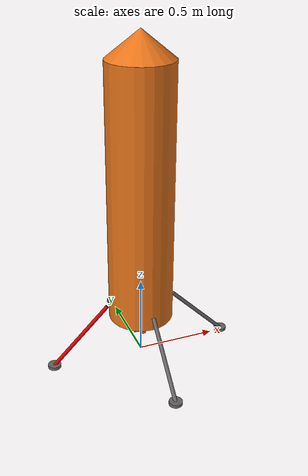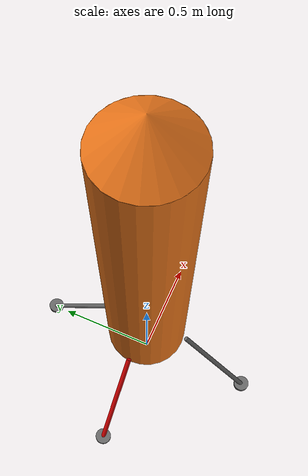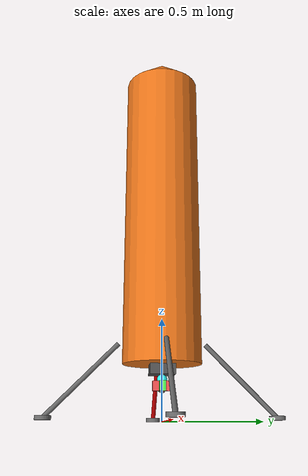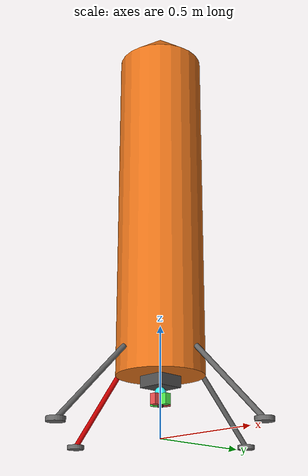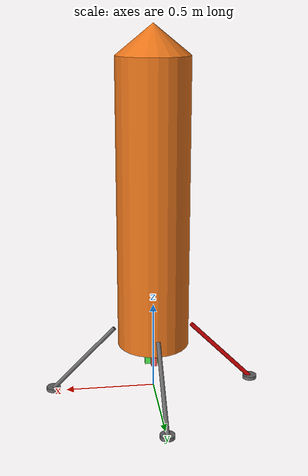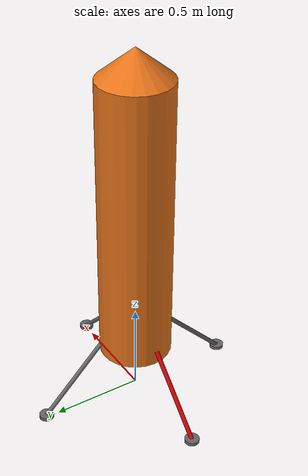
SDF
<?xml version="1.0"?>
<sdf version="1.11">
  <model name="TVC_Real">
    <self_collide>false</self_collide>
    <!-- Simplified visuals: orange body (r=0.20, L=1.6) + scaled landing gear + TVC/thrust markers. -->
    <link name="base_link">
      <pose>0 0 1.0725 0 0 0</pose>
      <inertial>
        <mass>20.0</mass>
        <pose>0 0 0 0 0 0</pose>
        <inertia>
          <ixx>3.2987</ixx>
          <iyy>3.2987</iyy>
          <izz>0.0640</izz>
          <ixy>0</ixy>
          <ixz>0</ixz>
          <iyz>0</iyz>
        </inertia>
      </inertial>

      <visual name="body_visual">
        <geometry>
          <cylinder>
            <radius>0.20</radius>
            <length>1.6</length>
          </cylinder>
        </geometry>
        <material>
          <ambient>0.75 0.35 0.05 1</ambient>
          <diffuse>0.90 0.45 0.10 1</diffuse>
          <specular>0.2 0.2 0.2 1</specular>
        </material>
      </visual>

      <!-- Nose cone on body (visual only; separate link caused ODE crash with TVC chain). -->
      <visual name="top_cone_visual">
        <pose>0 0 0.88 0 0 0</pose>
        <geometry>
          <cone>
            <radius>0.20</radius>
            <length>0.16</length>
          </cone>
        </geometry>
        <material>
          <ambient>0.75 0.35 0.05 1</ambient>
          <diffuse>0.90 0.45 0.10 1</diffuse>
        </material>
      </visual>

      <!-- Box collision: cylinders tip easily on rim contacts in DART/ODE. -->
      <collision name="body_collision">
        <geometry>
          <box>
            <size>0.4 0.4 1.6</size>
          </box>
        </geometry>
        <surface>
          <contact>
            <ode>
              <min_depth>0.001</min_depth>
              <max_vel>0.1</max_vel>
            </ode>
          </contact>
          <friction>
            <ode>
              <mu>1.0</mu>
              <mu2>1.0</mu2>
            </ode>
          </friction>
          <bounce>
            <restitution_coefficient>0</restitution_coefficient>
          </bounce>
        </surface>
      </collision>

      <sensor name="air_pressure_sensor" type="air_pressure">
        <always_on>1</always_on>
        <update_rate>50</update_rate>
        <air_pressure>
          <pressure>
            <noise type="gaussian">
              <mean>0</mean>
              <stddev>0</stddev>
            </noise>
          </pressure>
        </air_pressure>
      </sensor>
      <sensor name="magnetometer_sensor" type="magnetometer">
        <always_on>1</always_on>
        <update_rate>100</update_rate>
        <magnetometer>
          <x>
            <noise type="gaussian">
              <stddev>0.0001</stddev>
            </noise>
          </x>
          <y>
            <noise type="gaussian">
              <stddev>0.0001</stddev>
            </noise>
          </y>
          <z>
            <noise type="gaussian">
              <stddev>0.0001</stddev>
            </noise>
          </z>
        </magnetometer>
      </sensor>
      <sensor name="imu_sensor" type="imu">
        <always_on>1</always_on>
        <update_rate>250</update_rate>
        <imu>
          <angular_velocity>
            <x>
              <noise type="gaussian">
                <mean>0.0</mean>
                <stddev>0.0008726646</stddev>
              </noise>
            </x>
            <y>
              <noise type="gaussian">
                <mean>0.0</mean>
                <stddev>0.0008726646</stddev>
              </noise>
            </y>
            <z>
              <noise type="gaussian">
                <mean>0.0</mean>
                <stddev>0.0008726646</stddev>
              </noise>
            </z>
          </angular_velocity>
          <linear_acceleration>
            <x>
              <noise type="gaussian">
                <mean>0.0</mean>
                <stddev>0.00637</stddev>
              </noise>
            </x>
            <y>
              <noise type="gaussian">
                <mean>0.0</mean>
                <stddev>0.00637</stddev>
              </noise>
            </y>
            <z>
              <noise type="gaussian">
                <mean>0.0</mean>
                <stddev>0.00686</stddev>
              </noise>
            </z>
          </linear_acceleration>
        </imu>
      </sensor>
      <sensor name="navsat_sensor" type="navsat">
        <always_on>1</always_on>
        <update_rate>30</update_rate>
      </sensor>

      <!-- Landing gear visuals on body (proxy layout: pitch/roll ±45°, four azimuths). -->
      <visual name="leg_1_visual">
        <pose>0.397 0 -0.8785 0 -0.78539816339 0</pose>
        <geometry>
          <cylinder>
            <radius>0.012</radius>
            <length>0.50</length>
          </cylinder>
        </geometry>
        <material>
          <ambient>0.2 0.2 0.2 1</ambient>
          <diffuse>0.4 0.4 0.4 1</diffuse>
        </material>
      </visual>
      <visual name="leg_2_visual">
        <pose>0 0.397 -0.8785 0.78539816339 0 0</pose>
        <geometry>
          <cylinder>
            <radius>0.012</radius>
            <length>0.50</length>
          </cylinder>
        </geometry>
        <material>
          <ambient>0.2 0.2 0.2 1</ambient>
          <diffuse>0.4 0.4 0.4 1</diffuse>
        </material>
      </visual>
      <visual name="leg_3_visual">
        <pose>-0.397 0 -0.8785 0 0.78539816339 0</pose>
        <geometry>
          <cylinder>
            <radius>0.012</radius>
            <length>0.50</length>
          </cylinder>
        </geometry>
        <material>
          <ambient>0.2 0 0 1</ambient>
          <diffuse>0.8 0 0 1</diffuse>
        </material>
      </visual>
      <visual name="leg_4_visual">
        <pose>0 -0.397 -0.8785 -0.78539816339 0 0</pose>
        <geometry>
          <cylinder>
            <radius>0.012</radius>
            <length>0.50</length>
          </cylinder>
        </geometry>
        <material>
          <ambient>0.2 0.2 0.2 1</ambient>
          <diffuse>0.4 0.4 0.4 1</diffuse>
        </material>
      </visual>
      <visual name="foot_1_visual">
        <pose>0.573 0 -1.055 0 0 0</pose>
        <geometry>
          <cylinder>
            <radius>0.04</radius>
            <length>0.02</length>
          </cylinder>
        </geometry>
        <material>
          <ambient>0.2 0.2 0.2 1</ambient>
          <diffuse>0.4 0.4 0.4 1</diffuse>
        </material>
      </visual>
      <visual name="foot_2_visual">
        <pose>0 0.573 -1.055 0 0 0</pose>
        <geometry>
          <cylinder>
            <radius>0.04</radius>
            <length>0.02</length>
          </cylinder>
        </geometry>
        <material>
          <ambient>0.2 0.2 0.2 1</ambient>
          <diffuse>0.4 0.4 0.4 1</diffuse>
        </material>
      </visual>
      <visual name="foot_3_visual">
        <pose>-0.573 0 -1.055 0 0 0</pose>
        <geometry>
          <cylinder>
            <radius>0.04</radius>
            <length>0.02</length>
          </cylinder>
        </geometry>
        <material>
          <ambient>0.2 0.2 0.2 1</ambient>
          <diffuse>0.4 0.4 0.4 1</diffuse>
        </material>
      </visual>
      <visual name="foot_4_visual">
        <pose>0 -0.573 -1.055 0 0 0</pose>
        <geometry>
          <cylinder>
            <radius>0.04</radius>
            <length>0.02</length>
          </cylinder>
        </geometry>
        <material>
          <ambient>0.2 0.2 0.2 1</ambient>
          <diffuse>0.4 0.4 0.4 1</diffuse>
        </material>
      </visual>

      <!-- Landing gear collisions: feet only (leg cylinders overlap TVC at body bottom). -->
      <collision name="foot_1_collision">
        <pose>0.573 0 -1.055 0 0 0</pose>
        <geometry>
          <box>
            <size>0.08 0.08 0.02</size>
          </box>
        </geometry>
        <surface>
          <contact>
            <ode>
              <min_depth>0.001</min_depth>
              <max_vel>0.1</max_vel>
            </ode>
          </contact>
          <friction>
            <ode>
              <mu>1.2</mu>
              <mu2>1.2</mu2>
            </ode>
          </friction>
          <bounce>
            <restitution_coefficient>0</restitution_coefficient>
          </bounce>
        </surface>
      </collision>
      <collision name="foot_2_collision">
        <pose>0 0.573 -1.055 0 0 0</pose>
        <geometry>
          <box>
            <size>0.08 0.08 0.02</size>
          </box>
        </geometry>
        <surface>
          <contact>
            <ode>
              <min_depth>0.001</min_depth>
              <max_vel>0.1</max_vel>
            </ode>
          </contact>
          <friction>
            <ode>
              <mu>1.2</mu>
              <mu2>1.2</mu2>
            </ode>
          </friction>
          <bounce>
            <restitution_coefficient>0</restitution_coefficient>
          </bounce>
        </surface>
      </collision>
      <collision name="foot_3_collision">
        <pose>-0.573 0 -1.055 0 0 0</pose>
        <geometry>
          <box>
            <size>0.08 0.08 0.02</size>
          </box>
        </geometry>
        <surface>
          <contact>
            <ode>
              <min_depth>0.001</min_depth>
              <max_vel>0.1</max_vel>
            </ode>
          </contact>
          <friction>
            <ode>
              <mu>1.2</mu>
              <mu2>1.2</mu2>
            </ode>
          </friction>
          <bounce>
            <restitution_coefficient>0</restitution_coefficient>
          </bounce>
        </surface>
      </collision>
      <collision name="foot_4_collision">
        <pose>0 -0.573 -1.055 0 0 0</pose>
        <geometry>
          <box>
            <size>0.08 0.08 0.02</size>
          </box>
        </geometry>
        <surface>
          <contact>
            <ode>
              <min_depth>0.001</min_depth>
              <max_vel>0.1</max_vel>
            </ode>
          </contact>
          <friction>
            <ode>
              <mu>1.2</mu>
              <mu2>1.2</mu2>
            </ode>
          </friction>
          <bounce>
            <restitution_coefficient>0</restitution_coefficient>
          </bounce>
        </surface>
      </collision>
    </link>

    <!-- TVC chain: links co-located with base_link (avoid fixed-joint pose conflict at 20 kg). -->
    <link name="gimbal_mount">
      <pose>0 0 1.0725 0 0 0</pose>
      <inertial>
        <mass>0.005</mass>
        <inertia>
          <ixx>1e-5</ixx>
          <iyy>1e-5</iyy>
          <izz>1e-5</izz>
          <ixy>0</ixy>
          <ixz>0</ixz>
          <iyz>0</iyz>
        </inertia>
      </inertial>
      <visual name="gimbal_mount_visual">
        <pose>0 0 -0.82 0 0 0</pose>
        <geometry>
          <box>
            <size>0.128 0.128 0.064</size>
          </box>
        </geometry>
        <material>
          <ambient>0.1 0.1 0.1 1</ambient>
          <diffuse>0.3 0.3 0.3 1</diffuse>
        </material>
      </visual>
    </link>

    <link name="servo0_roll">
      <pose>0 0 1.0725 0 0 0</pose>
      <inertial>
        <mass>0.003</mass>
        <inertia>
          <ixx>1e-5</ixx>
          <iyy>1e-5</iyy>
          <izz>1e-5</izz>
          <ixy>0</ixy>
          <ixz>0</ixz>
          <iyz>0</iyz>
        </inertia>
      </inertial>
      <visual name="servo0_roll_visual">
        <pose>0 0 -0.905 0 0 0</pose>
        <geometry>
          <box>
            <size>0.032 0.096 0.048</size>
          </box>
        </geometry>
        <material>
          <ambient>0.8 0.2 0.2 1</ambient>
          <diffuse>0.9 0.3 0.3 1</diffuse>
        </material>
      </visual>
    </link>

    <link name="servo1_pitch">
      <pose>0 0 1.0725 0 0 0</pose>
      <inertial>
        <mass>0.003</mass>
        <inertia>
          <ixx>1e-5</ixx>
          <iyy>1e-5</iyy>
          <izz>1e-5</izz>
          <ixy>0</ixy>
          <ixz>0</ixz>
          <iyz>0</iyz>
        </inertia>
      </inertial>
      <visual name="servo1_pitch_visual">
        <pose>0 0 -0.905 0 0 0</pose>
        <geometry>
          <box>
            <size>0.096 0.032 0.048</size>
          </box>
        </geometry>
        <material>
          <ambient>0.2 0.8 0.2 1</ambient>
          <diffuse>0.3 0.9 0.3 1</diffuse>
        </material>
      </visual>
    </link>

    <link name="motor_housing">
      <pose>0 0 1.0725 0 0 0</pose>
      <inertial>
        <mass>0.01</mass>
        <inertia>
          <ixx>1e-5</ixx>
          <iyy>1e-5</iyy>
          <izz>1e-5</izz>
          <ixy>0</ixy>
          <ixz>0</ixz>
          <iyz>0</iyz>
        </inertia>
      </inertial>
      <visual name="motor_housing_visual">
        <pose>0 0 -0.905 0 0 0</pose>
        <geometry>
          <cylinder>
            <radius>0.013</radius>
            <length>0.064</length>
          </cylinder>
        </geometry>
        <material>
          <ambient>0.1 0.1 0.1 1</ambient>
          <diffuse>0.2 0.2 0.2 1</diffuse>
        </material>
      </visual>
      <visual name="thrust_point_visual">
        <pose>0 0 -0.873 0 0 0</pose>
        <geometry>
          <sphere>
            <radius>0.025</radius>
          </sphere>
        </geometry>
        <material>
          <ambient>0.1 0.9 1.0 1</ambient>
          <diffuse>0.2 1.0 1.0 1</diffuse>
          <emissive>0.0 0.6 0.8 1</emissive>
        </material>
      </visual>
      <visual name="thrust_axis_visual">
        <pose>0 0 -0.825 0 0 0</pose>
        <geometry>
          <cylinder>
            <radius>0.008</radius>
            <length>0.10</length>
          </cylinder>
        </geometry>
        <material>
          <ambient>0.1 0.7 1.0 1</ambient>
          <diffuse>0.2 0.85 1.0 1</diffuse>
          <emissive>0.0 0.4 0.7 1</emissive>
        </material>
      </visual>
    </link>

    <joint name="base_to_gimbal_mount" type="fixed">
      <parent>base_link</parent>
      <child>gimbal_mount</child>
    </joint>

    <joint name="servo0_roll_joint" type="revolute">
      <parent>gimbal_mount</parent>
      <child>servo0_roll</child>
      <pose>0 0 -0.82 0 0 0</pose>
      <axis>
        <xyz>1 0 0</xyz>
        <limit>
          <lower>-0.25</lower>
          <upper>0.25</upper>
        </limit>
        <dynamics>
          <damping>0.1</damping>
          <friction>0.05</friction>
        </dynamics>
      </axis>
    </joint>

    <joint name="servo1_pitch_joint" type="revolute">
      <parent>servo0_roll</parent>
      <child>servo1_pitch</child>
      <pose>0 0 -0.905 0 0 0</pose>
      <axis>
        <xyz>0 -1 0</xyz>
        <limit>
          <lower>-0.25</lower>
          <upper>0.25</upper>
        </limit>
        <dynamics>
          <damping>0.1</damping>
          <friction>0.05</friction>
        </dynamics>
      </axis>
    </joint>

    <joint name="pitch_to_motor" type="fixed">
      <parent>servo1_pitch</parent>
      <child>motor_housing</child>
      <pose>0 0 -0.905 0 0 0</pose>
    </joint>

    <plugin filename="libTvcRocketThrustPlugin.so"
            name="custom::TvcRocketThrustSystem">
      <!-- Direction follows gimbaled nozzle; force applied at fixed point on base_link. -->
      <link_name>motor_housing</link_name>
      <direction_link_name>motor_housing</direction_link_name>
      <application_link_name>base_link</application_link_name>
      <application_offset>0 0 -0.873 0 0 0</application_offset>
      <command_topic>command/motor_speed</command_topic>
      <thrust_axis>0 0 1</thrust_axis>
      <thrust_coefficient>2.0</thrust_coefficient>
      <thrust_min>0</thrust_min>
      <thrust_max>300</thrust_max>
      <rotor_velocity_slowdown>10</rotor_velocity_slowdown>
    </plugin>

    <plugin filename="gz-sim-joint-position-controller-system"
            name="gz::sim::systems::JointPositionController">
      <joint_name>servo1_pitch_joint</joint_name>
      <sub_topic>servo_1</sub_topic>
      <p_gain>3</p_gain>
      </plugin>

    <plugin filename="gz-sim-joint-position-controller-system"
            name="gz::sim::systems::JointPositionController">
      <joint_name>servo0_roll_joint</joint_name>
      <sub_topic>servo_0</sub_topic>
      <p_gain>3</p_gain>
      </plugin>

    <plugin
      filename="gz-sim-joint-state-publisher-system"
      name="gz::sim::systems::JointStatePublisher">
      <topic>/tvc/joint_state</topic>
      <joint_name>servo1_pitch_joint</joint_name>
      <joint_name>servo0_roll_joint</joint_name>
    </plugin>

    <plugin
      filename="gz-sim-odometry-publisher-system"
      name="gz::sim::systems::OdometryPublisher">
      <odom_frame>odom</odom_frame>
      <robot_base_frame>base_link</robot_base_frame>
      <dimensions>3</dimensions>
    </plugin>

  </model>
</sdf>
